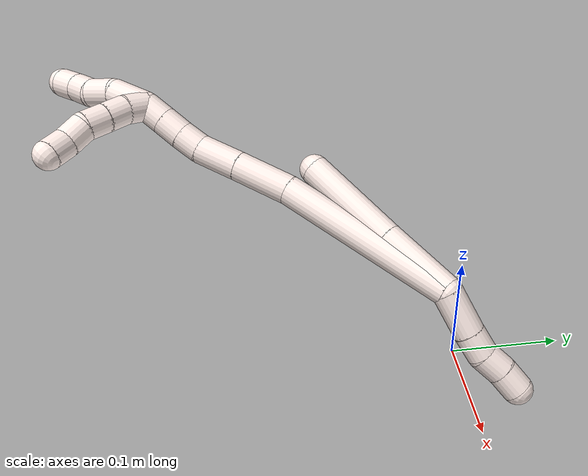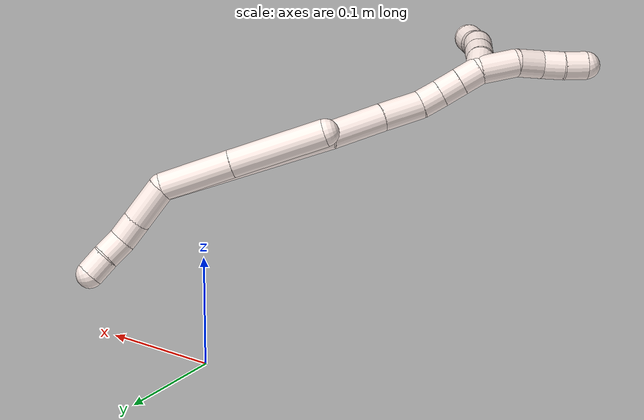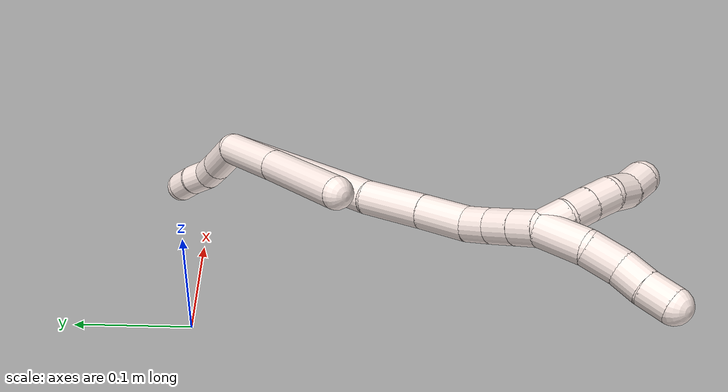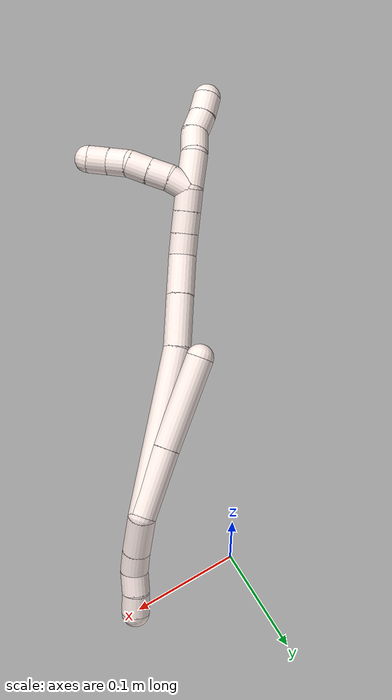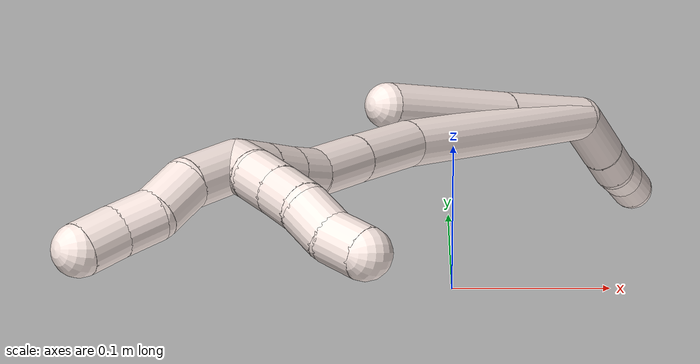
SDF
<sdf version="1.7">
 <world name="default">
  <model name="11">
   <static>0</static>
   <link name="11">
    <collision name="collision-cylinder-e_1_2_8">
     <pose>-0.000156 -2e-06 0.031871 6.7e-05 -0.004898 -0</pose>
     <geometry><cylinder><radius>0.0125</radius><length>0.063743</length></cylinder></geometry>
     <surface>
      <friction><ode><mu>1.16</mu><mu2>1.16</mu2><slip1>0</slip1><slip2>0</slip2></ode></friction>
      <contact><ode><kp>1e+06</kp><kd>1</kd><max_vel>0</max_vel><min_depth>0.001</min_depth></ode></contact>
     </surface>
    </collision>
    <visual name="visual-cylinder-e_1_2_8">
     <pose>-0.000156 -2e-06 0.031871 6.7e-05 -0.004898 -0</pose>
     <geometry><cylinder><radius>0.0125</radius><length>0.063743</length></cylinder></geometry>
     <material><ambient>1 0.933333 0.909804 1</ambient></material>
    </visual>
    <collision name="collision-cylinder-e_2_8_6">
     <pose>0.000416 -0.000528 0.106862 0.012141 0.016874 0.000102</pose>
     <geometry><cylinder><radius>0.0125</radius><length>0.086257</length></cylinder></geometry>
     <surface>
      <friction><ode><mu>1.16</mu><mu2>1.16</mu2><slip1>0</slip1><slip2>0</slip2></ode></friction>
      <contact><ode><kp>1e+06</kp><kd>1</kd><max_vel>0</max_vel><min_depth>0.001</min_depth></ode></contact>
     </surface>
    </collision>
    <visual name="visual-cylinder-e_2_8_6">
     <pose>0.000416 -0.000528 0.106862 0.012141 0.016874 0.000102</pose>
     <geometry><cylinder><radius>0.0125</radius><length>0.086257</length></cylinder></geometry>
     <material><ambient>1 0.933333 0.909804 1</ambient></material>
    </visual>
    <collision name="collision-cylinder-e_1_2_9">
     <pose>0.005312 0.009286 -0.015372 -2.59816 0.287582 -0.958562</pose>
     <geometry><cylinder><radius>0.0125</radius><length>0.037457</length></cylinder></geometry>
     <surface>
      <friction><ode><mu>1.16</mu><mu2>1.16</mu2><slip1>0</slip1><slip2>0</slip2></ode></friction>
      <contact><ode><kp>1e+06</kp><kd>1</kd><max_vel>0</max_vel><min_depth>0.001</min_depth></ode></contact>
     </surface>
    </collision>
    <visual name="visual-cylinder-e_1_2_9">
     <pose>0.005312 0.009286 -0.015372 -2.59816 0.287582 -0.958562</pose>
     <geometry><cylinder><radius>0.0125</radius><length>0.037457</length></cylinder></geometry>
     <material><ambient>1 0.933333 0.909804 1</ambient></material>
    </visual>
    <collision name="collision-cylinder-e_2_9_10">
     <pose>0.014082 0.023476 -0.039588 -2.63531 0.329465 -1.14234</pose>
     <geometry><cylinder><radius>0.0125</radius><length>0.021373</length></cylinder></geometry>
     <surface>
      <friction><ode><mu>1.16</mu><mu2>1.16</mu2><slip1>0</slip1><slip2>0</slip2></ode></friction>
      <contact><ode><kp>1e+06</kp><kd>1</kd><max_vel>0</max_vel><min_depth>0.001</min_depth></ode></contact>
     </surface>
    </collision>
    <visual name="visual-cylinder-e_2_9_10">
     <pose>0.014082 0.023476 -0.039588 -2.63531 0.329465 -1.14234</pose>
     <geometry><cylinder><radius>0.0125</radius><length>0.021373</length></cylinder></geometry>
     <material><ambient>1 0.933333 0.909804 1</ambient></material>
    </visual>
    <collision name="collision-cylinder-e_3_10_11">
     <pose>0.022181 0.030398 -0.057455 -2.92154 0.465281 -2.26898</pose>
     <geometry><cylinder><radius>0.0125</radius><length>0.020693</length></cylinder></geometry>
     <surface>
      <friction><ode><mu>1.16</mu><mu2>1.16</mu2><slip1>0</slip1><slip2>0</slip2></ode></friction>
      <contact><ode><kp>1e+06</kp><kd>1</kd><max_vel>0</max_vel><min_depth>0.001</min_depth></ode></contact>
     </surface>
    </collision>
    <visual name="visual-cylinder-e_3_10_11">
     <pose>0.022181 0.030398 -0.057455 -2.92154 0.465281 -2.26898</pose>
     <geometry><cylinder><radius>0.0125</radius><length>0.020693</length></cylinder></geometry>
     <material><ambient>1 0.933333 0.909804 1</ambient></material>
    </visual>
    <collision name="collision-cylinder-e_4_11_5">
     <pose>0.030751 0.035722 -0.075337 -2.78448 0.393672 -1.67042</pose>
     <geometry><cylinder><radius>0.0125</radius><length>0.020477</length></cylinder></geometry>
     <surface>
      <friction><ode><mu>1.16</mu><mu2>1.16</mu2><slip1>0</slip1><slip2>0</slip2></ode></friction>
      <contact><ode><kp>1e+06</kp><kd>1</kd><max_vel>0</max_vel><min_depth>0.001</min_depth></ode></contact>
     </surface>
    </collision>
    <visual name="visual-cylinder-e_4_11_5">
     <pose>0.030751 0.035722 -0.075337 -2.78448 0.393672 -1.67042</pose>
     <geometry><cylinder><radius>0.0125</radius><length>0.020477</length></cylinder></geometry>
     <material><ambient>1 0.933333 0.909804 1</ambient></material>
    </visual>
    <collision name="collision-cylinder-e_1_2_12">
     <pose>-0.00795 0.010157 0.075969 -0.132905 -0.103355 0.006884</pose>
     <geometry><cylinder><radius>0.0125</radius><length>0.154113</length></cylinder></geometry>
     <surface>
      <friction><ode><mu>1.16</mu><mu2>1.16</mu2><slip1>0</slip1><slip2>0</slip2></ode></friction>
      <contact><ode><kp>1e+06</kp><kd>1</kd><max_vel>0</max_vel><min_depth>0.001</min_depth></ode></contact>
     </surface>
    </collision>
    <visual name="visual-cylinder-e_1_2_12">
     <pose>-0.00795 0.010157 0.075969 -0.132905 -0.103355 0.006884</pose>
     <geometry><cylinder><radius>0.0125</radius><length>0.154113</length></cylinder></geometry>
     <material><ambient>1 0.933333 0.909804 1</ambient></material>
    </visual>
    <collision name="collision-cylinder-e_2_12_13">
     <pose>-0.021512 0.025244 0.175009 -0.210575 -0.233551 0.024793</pose>
     <geometry><cylinder><radius>0.0125</radius><length>0.048501</length></cylinder></geometry>
     <surface>
      <friction><ode><mu>1.16</mu><mu2>1.16</mu2><slip1>0</slip1><slip2>0</slip2></ode></friction>
      <contact><ode><kp>1e+06</kp><kd>1</kd><max_vel>0</max_vel><min_depth>0.001</min_depth></ode></contact>
     </surface>
    </collision>
    <visual name="visual-cylinder-e_2_12_13">
     <pose>-0.021512 0.025244 0.175009 -0.210575 -0.233551 0.024793</pose>
     <geometry><cylinder><radius>0.0125</radius><length>0.048501</length></cylinder></geometry>
     <material><ambient>1 0.933333 0.909804 1</ambient></material>
    </visual>
    <collision name="collision-cylinder-e_3_13_14">
     <pose>-0.031239 0.034245 0.215602 -0.228224 -0.224851 0.025878</pose>
     <geometry><cylinder><radius>0.0125</radius><length>0.036905</length></cylinder></geometry>
     <surface>
      <friction><ode><mu>1.16</mu><mu2>1.16</mu2><slip1>0</slip1><slip2>0</slip2></ode></friction>
      <contact><ode><kp>1e+06</kp><kd>1</kd><max_vel>0</max_vel><min_depth>0.001</min_depth></ode></contact>
     </surface>
    </collision>
    <visual name="visual-cylinder-e_3_13_14">
     <pose>-0.031239 0.034245 0.215602 -0.228224 -0.224851 0.025878</pose>
     <geometry><cylinder><radius>0.0125</radius><length>0.036905</length></cylinder></geometry>
     <material><ambient>1 0.933333 0.909804 1</ambient></material>
    </visual>
    <collision name="collision-cylinder-e_4_14_15">
     <pose>-0.037948 0.038208 0.242844 0.010999 -0.260816 -0.001443</pose>
     <geometry><cylinder><radius>0.0125</radius><length>0.020123</length></cylinder></geometry>
     <surface>
      <friction><ode><mu>1.16</mu><mu2>1.16</mu2><slip1>0</slip1><slip2>0</slip2></ode></friction>
      <contact><ode><kp>1e+06</kp><kd>1</kd><max_vel>0</max_vel><min_depth>0.001</min_depth></ode></contact>
     </surface>
    </collision>
    <visual name="visual-cylinder-e_4_14_15">
     <pose>-0.037948 0.038208 0.242844 0.010999 -0.260816 -0.001443</pose>
     <geometry><cylinder><radius>0.0125</radius><length>0.020123</length></cylinder></geometry>
     <material><ambient>1 0.933333 0.909804 1</ambient></material>
    </visual>
    <collision name="collision-cylinder-e_5_15_16">
     <pose>-0.043073 0.037523 0.262395 0.058731 -0.251591 -0.007429</pose>
     <geometry><cylinder><radius>0.0125</radius><length>0.020334</length></cylinder></geometry>
     <surface>
      <friction><ode><mu>1.16</mu><mu2>1.16</mu2><slip1>0</slip1><slip2>0</slip2></ode></friction>
      <contact><ode><kp>1e+06</kp><kd>1</kd><max_vel>0</max_vel><min_depth>0.001</min_depth></ode></contact>
     </surface>
    </collision>
    <visual name="visual-cylinder-e_5_15_16">
     <pose>-0.043073 0.037523 0.262395 0.058731 -0.251591 -0.007429</pose>
     <geometry><cylinder><radius>0.0125</radius><length>0.020334</length></cylinder></geometry>
     <material><ambient>1 0.933333 0.909804 1</ambient></material>
    </visual>
    <collision name="collision-cylinder-e_6_16_1">
     <pose>-0.04811 0.036468 0.281906 0.049264 -0.252985 -0.006266</pose>
     <geometry><cylinder><radius>0.0125</radius><length>0.020024</length></cylinder></geometry>
     <surface>
      <friction><ode><mu>1.16</mu><mu2>1.16</mu2><slip1>0</slip1><slip2>0</slip2></ode></friction>
      <contact><ode><kp>1e+06</kp><kd>1</kd><max_vel>0</max_vel><min_depth>0.001</min_depth></ode></contact>
     </surface>
    </collision>
    <visual name="visual-cylinder-e_6_16_1">
     <pose>-0.04811 0.036468 0.281906 0.049264 -0.252985 -0.006266</pose>
     <geometry><cylinder><radius>0.0125</radius><length>0.020024</length></cylinder></geometry>
     <material><ambient>1 0.933333 0.909804 1</ambient></material>
    </visual>
    <collision name="collision-cylinder-e_1_1_17">
     <pose>-0.0528 0.040843 0.307924 -0.288737 -0.127435 0.018551</pose>
     <geometry><cylinder><radius>0.0125</radius><length>0.034362</length></cylinder></geometry>
     <surface>
      <friction><ode><mu>1.16</mu><mu2>1.16</mu2><slip1>0</slip1><slip2>0</slip2></ode></friction>
      <contact><ode><kp>1e+06</kp><kd>1</kd><max_vel>0</max_vel><min_depth>0.001</min_depth></ode></contact>
     </surface>
    </collision>
    <visual name="visual-cylinder-e_1_1_17">
     <pose>-0.0528 0.040843 0.307924 -0.288737 -0.127435 0.018551</pose>
     <geometry><cylinder><radius>0.0125</radius><length>0.034362</length></cylinder></geometry>
     <material><ambient>1 0.933333 0.909804 1</ambient></material>
    </visual>
    <collision name="collision-cylinder-e_2_17_18">
     <pose>-0.056397 0.052819 0.334234 -0.62023 -0.11483 0.036834</pose>
     <geometry><cylinder><radius>0.0125</radius><length>0.024675</length></cylinder></geometry>
     <surface>
      <friction><ode><mu>1.16</mu><mu2>1.16</mu2><slip1>0</slip1><slip2>0</slip2></ode></friction>
      <contact><ode><kp>1e+06</kp><kd>1</kd><max_vel>0</max_vel><min_depth>0.001</min_depth></ode></contact>
     </surface>
    </collision>
    <visual name="visual-cylinder-e_2_17_18">
     <pose>-0.056397 0.052819 0.334234 -0.62023 -0.11483 0.036834</pose>
     <geometry><cylinder><radius>0.0125</radius><length>0.024675</length></cylinder></geometry>
     <material><ambient>1 0.933333 0.909804 1</ambient></material>
    </visual>
    <collision name="collision-cylinder-e_3_18_19">
     <pose>-0.056404 0.063809 0.353621 -0.389669 0.137373 -0.02715</pose>
     <geometry><cylinder><radius>0.0125</radius><length>0.020547</length></cylinder></geometry>
     <surface>
      <friction><ode><mu>1.16</mu><mu2>1.16</mu2><slip1>0</slip1><slip2>0</slip2></ode></friction>
      <contact><ode><kp>1e+06</kp><kd>1</kd><max_vel>0</max_vel><min_depth>0.001</min_depth></ode></contact>
     </surface>
    </collision>
    <visual name="visual-cylinder-e_3_18_19">
     <pose>-0.056404 0.063809 0.353621 -0.389669 0.137373 -0.02715</pose>
     <geometry><cylinder><radius>0.0125</radius><length>0.020547</length></cylinder></geometry>
     <material><ambient>1 0.933333 0.909804 1</ambient></material>
    </visual>
    <collision name="collision-cylinder-e_4_19_4">
     <pose>-0.054819 0.071619 0.372449 -0.396835 0.017421 -0.003503</pose>
     <geometry><cylinder><radius>0.0125</radius><length>0.020416</length></cylinder></geometry>
     <surface>
      <friction><ode><mu>1.16</mu><mu2>1.16</mu2><slip1>0</slip1><slip2>0</slip2></ode></friction>
      <contact><ode><kp>1e+06</kp><kd>1</kd><max_vel>0</max_vel><min_depth>0.001</min_depth></ode></contact>
     </surface>
    </collision>
    <visual name="visual-cylinder-e_4_19_4">
     <pose>-0.054819 0.071619 0.372449 -0.396835 0.017421 -0.003503</pose>
     <geometry><cylinder><radius>0.0125</radius><length>0.020416</length></cylinder></geometry>
     <material><ambient>1 0.933333 0.909804 1</ambient></material>
    </visual>
    <collision name="collision-cylinder-e_1_1_20">
     <pose>-0.060013 0.038855 0.293458 -0.992394 -1.22167 0.724632</pose>
     <geometry><cylinder><radius>0.0125</radius><length>0.02</length></cylinder></geometry>
     <surface>
      <friction><ode><mu>1.16</mu><mu2>1.16</mu2><slip1>0</slip1><slip2>0</slip2></ode></friction>
      <contact><ode><kp>1e+06</kp><kd>1</kd><max_vel>0</max_vel><min_depth>0.001</min_depth></ode></contact>
     </surface>
    </collision>
    <visual name="visual-cylinder-e_1_1_20">
     <pose>-0.060013 0.038855 0.293458 -0.992394 -1.22167 0.724632</pose>
     <geometry><cylinder><radius>0.0125</radius><length>0.02</length></cylinder></geometry>
     <material><ambient>1 0.933333 0.909804 1</ambient></material>
    </visual>
    <collision name="collision-cylinder-e_2_20_21">
     <pose>-0.078599 0.045662 0.295433 -1.54422 -1.1654 1.14111</pose>
     <geometry><cylinder><radius>0.0125</radius><length>0.02</length></cylinder></geometry>
     <surface>
      <friction><ode><mu>1.16</mu><mu2>1.16</mu2><slip1>0</slip1><slip2>0</slip2></ode></friction>
      <contact><ode><kp>1e+06</kp><kd>1</kd><max_vel>0</max_vel><min_depth>0.001</min_depth></ode></contact>
     </surface>
    </collision>
    <visual name="visual-cylinder-e_2_20_21">
     <pose>-0.078599 0.045662 0.295433 -1.54422 -1.1654 1.14111</pose>
     <geometry><cylinder><radius>0.0125</radius><length>0.02</length></cylinder></geometry>
     <material><ambient>1 0.933333 0.909804 1</ambient></material>
    </visual>
    <collision name="collision-cylinder-e_3_21_22">
     <pose>-0.09691 0.053686 0.295915 -1.47875 -1.14842 1.06601</pose>
     <geometry><cylinder><radius>0.0125</radius><length>0.02</length></cylinder></geometry>
     <surface>
      <friction><ode><mu>1.16</mu><mu2>1.16</mu2><slip1>0</slip1><slip2>0</slip2></ode></friction>
      <contact><ode><kp>1e+06</kp><kd>1</kd><max_vel>0</max_vel><min_depth>0.001</min_depth></ode></contact>
     </surface>
    </collision>
    <visual name="visual-cylinder-e_3_21_22">
     <pose>-0.09691 0.053686 0.295915 -1.47875 -1.14842 1.06601</pose>
     <geometry><cylinder><radius>0.0125</radius><length>0.02</length></cylinder></geometry>
     <material><ambient>1 0.933333 0.909804 1</ambient></material>
    </visual>
    <collision name="collision-cylinder-e_4_22_23">
     <pose>-0.113553 0.064187 0.2948 -1.79904 -0.851361 1.03734</pose>
     <geometry><cylinder><radius>0.0125</radius><length>0.02</length></cylinder></geometry>
     <surface>
      <friction><ode><mu>1.16</mu><mu2>1.16</mu2><slip1>0</slip1><slip2>0</slip2></ode></friction>
      <contact><ode><kp>1e+06</kp><kd>1</kd><max_vel>0</max_vel><min_depth>0.001</min_depth></ode></contact>
     </surface>
    </collision>
    <visual name="visual-cylinder-e_4_22_23">
     <pose>-0.113553 0.064187 0.2948 -1.79904 -0.851361 1.03734</pose>
     <geometry><cylinder><radius>0.0125</radius><length>0.02</length></cylinder></geometry>
     <material><ambient>1 0.933333 0.909804 1</ambient></material>
    </visual>
    <collision name="collision-cylinder-e_5_23_3">
     <pose>-0.130076 0.074441 0.291244 -2.06479 -1.12001 1.6193</pose>
     <geometry><cylinder><radius>0.0125</radius><length>0.02</length></cylinder></geometry>
     <surface>
      <friction><ode><mu>1.16</mu><mu2>1.16</mu2><slip1>0</slip1><slip2>0</slip2></ode></friction>
      <contact><ode><kp>1e+06</kp><kd>1</kd><max_vel>0</max_vel><min_depth>0.001</min_depth></ode></contact>
     </surface>
    </collision>
    <visual name="visual-cylinder-e_5_23_3">
     <pose>-0.130076 0.074441 0.291244 -2.06479 -1.12001 1.6193</pose>
     <geometry><cylinder><radius>0.0125</radius><length>0.02</length></cylinder></geometry>
     <material><ambient>1 0.933333 0.909804 1</ambient></material>
    </visual>
    <collision name="collision-sphere-3">
     <pose>-0.139077 0.078277 0.289178 0 -0 0</pose>
     <geometry><sphere><radius>0.0125</radius></sphere></geometry>
     <surface>
      <friction><ode><mu>1.16</mu><mu2>1.16</mu2><slip1>0</slip1><slip2>0</slip2></ode></friction>
      <contact><ode><kp>1e+06</kp><kd>1</kd><max_vel>0</max_vel><min_depth>0.001</min_depth></ode></contact>
     </surface>
    </collision>
    <visual name="visual-sphere-3">
     <pose>-0.139077 0.078277 0.289178 0 -0 0</pose>
     <geometry><sphere><radius>0.0125</radius></sphere></geometry>
     <material><ambient>1 0.933333 0.909804 1</ambient></material>
    </visual>
    <collision name="collision-sphere-23">
     <pose>-0.121075 0.070605 0.293309 0 -0 0</pose>
     <geometry><sphere><radius>0.0125</radius></sphere></geometry>
     <surface>
      <friction><ode><mu>1.16</mu><mu2>1.16</mu2><slip1>0</slip1><slip2>0</slip2></ode></friction>
      <contact><ode><kp>1e+06</kp><kd>1</kd><max_vel>0</max_vel><min_depth>0.001</min_depth></ode></contact>
     </surface>
    </collision>
    <visual name="visual-sphere-23">
     <pose>-0.121075 0.070605 0.293309 0 -0 0</pose>
     <geometry><sphere><radius>0.0125</radius></sphere></geometry>
     <material><ambient>1 0.933333 0.909804 1</ambient></material>
    </visual>
    <collision name="collision-sphere-22">
     <pose>-0.106031 0.057768 0.296291 0 -0 0</pose>
     <geometry><sphere><radius>0.0125</radius></sphere></geometry>
     <surface>
      <friction><ode><mu>1.16</mu><mu2>1.16</mu2><slip1>0</slip1><slip2>0</slip2></ode></friction>
      <contact><ode><kp>1e+06</kp><kd>1</kd><max_vel>0</max_vel><min_depth>0.001</min_depth></ode></contact>
     </surface>
    </collision>
    <visual name="visual-sphere-22">
     <pose>-0.106031 0.057768 0.296291 0 -0 0</pose>
     <geometry><sphere><radius>0.0125</radius></sphere></geometry>
     <material><ambient>1 0.933333 0.909804 1</ambient></material>
    </visual>
    <collision name="collision-sphere-21">
     <pose>-0.087789 0.049604 0.295538 0 -0 0</pose>
     <geometry><sphere><radius>0.0125</radius></sphere></geometry>
     <surface>
      <friction><ode><mu>1.16</mu><mu2>1.16</mu2><slip1>0</slip1><slip2>0</slip2></ode></friction>
      <contact><ode><kp>1e+06</kp><kd>1</kd><max_vel>0</max_vel><min_depth>0.001</min_depth></ode></contact>
     </surface>
    </collision>
    <visual name="visual-sphere-21">
     <pose>-0.087789 0.049604 0.295538 0 -0 0</pose>
     <geometry><sphere><radius>0.0125</radius></sphere></geometry>
     <material><ambient>1 0.933333 0.909804 1</ambient></material>
    </visual>
    <collision name="collision-sphere-20">
     <pose>-0.06941 0.041719 0.295328 0 -0 0</pose>
     <geometry><sphere><radius>0.0125</radius></sphere></geometry>
     <surface>
      <friction><ode><mu>1.16</mu><mu2>1.16</mu2><slip1>0</slip1><slip2>0</slip2></ode></friction>
      <contact><ode><kp>1e+06</kp><kd>1</kd><max_vel>0</max_vel><min_depth>0.001</min_depth></ode></contact>
     </surface>
    </collision>
    <visual name="visual-sphere-20">
     <pose>-0.06941 0.041719 0.295328 0 -0 0</pose>
     <geometry><sphere><radius>0.0125</radius></sphere></geometry>
     <material><ambient>1 0.933333 0.909804 1</ambient></material>
    </visual>
    <collision name="collision-sphere-4">
     <pose>-0.054641 0.075564 0.381862 0 -0 0</pose>
     <geometry><sphere><radius>0.0125</radius></sphere></geometry>
     <surface>
      <friction><ode><mu>1.16</mu><mu2>1.16</mu2><slip1>0</slip1><slip2>0</slip2></ode></friction>
      <contact><ode><kp>1e+06</kp><kd>1</kd><max_vel>0</max_vel><min_depth>0.001</min_depth></ode></contact>
     </surface>
    </collision>
    <visual name="visual-sphere-4">
     <pose>-0.054641 0.075564 0.381862 0 -0 0</pose>
     <geometry><sphere><radius>0.0125</radius></sphere></geometry>
     <material><ambient>1 0.933333 0.909804 1</ambient></material>
    </visual>
    <collision name="collision-sphere-11">
     <pose>0.026823 0.032416 -0.066478 0 -0 0</pose>
     <geometry><sphere><radius>0.0125</radius></sphere></geometry>
     <surface>
      <friction><ode><mu>1.16</mu><mu2>1.16</mu2><slip1>0</slip1><slip2>0</slip2></ode></friction>
      <contact><ode><kp>1e+06</kp><kd>1</kd><max_vel>0</max_vel><min_depth>0.001</min_depth></ode></contact>
     </surface>
    </collision>
    <visual name="visual-sphere-11">
     <pose>0.026823 0.032416 -0.066478 0 -0 0</pose>
     <geometry><sphere><radius>0.0125</radius></sphere></geometry>
     <material><ambient>1 0.933333 0.909804 1</ambient></material>
    </visual>
    <collision name="collision-sphere-10">
     <pose>0.017539 0.02838 -0.048431 0 -0 0</pose>
     <geometry><sphere><radius>0.0125</radius></sphere></geometry>
     <surface>
      <friction><ode><mu>1.16</mu><mu2>1.16</mu2><slip1>0</slip1><slip2>0</slip2></ode></friction>
      <contact><ode><kp>1e+06</kp><kd>1</kd><max_vel>0</max_vel><min_depth>0.001</min_depth></ode></contact>
     </surface>
    </collision>
    <visual name="visual-sphere-10">
     <pose>0.017539 0.02838 -0.048431 0 -0 0</pose>
     <geometry><sphere><radius>0.0125</radius></sphere></geometry>
     <material><ambient>1 0.933333 0.909804 1</ambient></material>
    </visual>
    <collision name="collision-sphere-6">
     <pose>0.001143 -0.001051 0.149981 0 -0 0</pose>
     <geometry><sphere><radius>0.0125</radius></sphere></geometry>
     <surface>
      <friction><ode><mu>1.16</mu><mu2>1.16</mu2><slip1>0</slip1><slip2>0</slip2></ode></friction>
      <contact><ode><kp>1e+06</kp><kd>1</kd><max_vel>0</max_vel><min_depth>0.001</min_depth></ode></contact>
     </surface>
    </collision>
    <visual name="visual-sphere-6">
     <pose>0.001143 -0.001051 0.149981 0 -0 0</pose>
     <geometry><sphere><radius>0.0125</radius></sphere></geometry>
     <material><ambient>1 0.933333 0.909804 1</ambient></material>
    </visual>
    <collision name="collision-sphere-9">
     <pose>0.010624 0.018573 -0.030744 0 -0 0</pose>
     <geometry><sphere><radius>0.0125</radius></sphere></geometry>
     <surface>
      <friction><ode><mu>1.16</mu><mu2>1.16</mu2><slip1>0</slip1><slip2>0</slip2></ode></friction>
      <contact><ode><kp>1e+06</kp><kd>1</kd><max_vel>0</max_vel><min_depth>0.001</min_depth></ode></contact>
     </surface>
    </collision>
    <visual name="visual-sphere-9">
     <pose>0.010624 0.018573 -0.030744 0 -0 0</pose>
     <geometry><sphere><radius>0.0125</radius></sphere></geometry>
     <material><ambient>1 0.933333 0.909804 1</ambient></material>
    </visual>
    <collision name="collision-sphere-2">
     <geometry><sphere><radius>0.0125</radius></sphere></geometry>
     <surface>
      <friction><ode><mu>1.16</mu><mu2>1.16</mu2><slip1>0</slip1><slip2>0</slip2></ode></friction>
      <contact><ode><kp>1e+06</kp><kd>1</kd><max_vel>0</max_vel><min_depth>0.001</min_depth></ode></contact>
     </surface>
    </collision>
    <visual name="visual-sphere-2">
     <geometry><sphere><radius>0.0125</radius></sphere></geometry>
     <material><ambient>1 0.933333 0.909804 1</ambient></material>
    </visual>
    <collision name="collision-sphere-19">
     <pose>-0.054997 0.067675 0.363035 0 -0 0</pose>
     <geometry><sphere><radius>0.0125</radius></sphere></geometry>
     <surface>
      <friction><ode><mu>1.16</mu><mu2>1.16</mu2><slip1>0</slip1><slip2>0</slip2></ode></friction>
      <contact><ode><kp>1e+06</kp><kd>1</kd><max_vel>0</max_vel><min_depth>0.001</min_depth></ode></contact>
     </surface>
    </collision>
    <visual name="visual-sphere-19">
     <pose>-0.054997 0.067675 0.363035 0 -0 0</pose>
     <geometry><sphere><radius>0.0125</radius></sphere></geometry>
     <material><ambient>1 0.933333 0.909804 1</ambient></material>
    </visual>
    <collision name="collision-sphere-8">
     <pose>-0.000312 -4e-06 0.063742 0 -0 0</pose>
     <geometry><sphere><radius>0.0125</radius></sphere></geometry>
     <surface>
      <friction><ode><mu>1.16</mu><mu2>1.16</mu2><slip1>0</slip1><slip2>0</slip2></ode></friction>
      <contact><ode><kp>1e+06</kp><kd>1</kd><max_vel>0</max_vel><min_depth>0.001</min_depth></ode></contact>
     </surface>
    </collision>
    <visual name="visual-sphere-8">
     <pose>-0.000312 -4e-06 0.063742 0 -0 0</pose>
     <geometry><sphere><radius>0.0125</radius></sphere></geometry>
     <material><ambient>1 0.933333 0.909804 1</ambient></material>
    </visual>
    <collision name="collision-sphere-5">
     <pose>0.034678 0.039027 -0.084196 0 -0 0</pose>
     <geometry><sphere><radius>0.0125</radius></sphere></geometry>
     <surface>
      <friction><ode><mu>1.16</mu><mu2>1.16</mu2><slip1>0</slip1><slip2>0</slip2></ode></friction>
      <contact><ode><kp>1e+06</kp><kd>1</kd><max_vel>0</max_vel><min_depth>0.001</min_depth></ode></contact>
     </surface>
    </collision>
    <visual name="visual-sphere-5">
     <pose>0.034678 0.039027 -0.084196 0 -0 0</pose>
     <geometry><sphere><radius>0.0125</radius></sphere></geometry>
     <material><ambient>1 0.933333 0.909804 1</ambient></material>
    </visual>
    <collision name="collision-sphere-12">
     <pose>-0.0159 0.020313 0.151939 0 -0 0</pose>
     <geometry><sphere><radius>0.0125</radius></sphere></geometry>
     <surface>
      <friction><ode><mu>1.16</mu><mu2>1.16</mu2><slip1>0</slip1><slip2>0</slip2></ode></friction>
      <contact><ode><kp>1e+06</kp><kd>1</kd><max_vel>0</max_vel><min_depth>0.001</min_depth></ode></contact>
     </surface>
    </collision>
    <visual name="visual-sphere-12">
     <pose>-0.0159 0.020313 0.151939 0 -0 0</pose>
     <geometry><sphere><radius>0.0125</radius></sphere></geometry>
     <material><ambient>1 0.933333 0.909804 1</ambient></material>
    </visual>
    <collision name="collision-sphere-13">
     <pose>-0.027125 0.030176 0.19808 0 -0 0</pose>
     <geometry><sphere><radius>0.0125</radius></sphere></geometry>
     <surface>
      <friction><ode><mu>1.16</mu><mu2>1.16</mu2><slip1>0</slip1><slip2>0</slip2></ode></friction>
      <contact><ode><kp>1e+06</kp><kd>1</kd><max_vel>0</max_vel><min_depth>0.001</min_depth></ode></contact>
     </surface>
    </collision>
    <visual name="visual-sphere-13">
     <pose>-0.027125 0.030176 0.19808 0 -0 0</pose>
     <geometry><sphere><radius>0.0125</radius></sphere></geometry>
     <material><ambient>1 0.933333 0.909804 1</ambient></material>
    </visual>
    <collision name="collision-sphere-14">
     <pose>-0.035353 0.038315 0.233123 0 -0 0</pose>
     <geometry><sphere><radius>0.0125</radius></sphere></geometry>
     <surface>
      <friction><ode><mu>1.16</mu><mu2>1.16</mu2><slip1>0</slip1><slip2>0</slip2></ode></friction>
      <contact><ode><kp>1e+06</kp><kd>1</kd><max_vel>0</max_vel><min_depth>0.001</min_depth></ode></contact>
     </surface>
    </collision>
    <visual name="visual-sphere-14">
     <pose>-0.035353 0.038315 0.233123 0 -0 0</pose>
     <geometry><sphere><radius>0.0125</radius></sphere></geometry>
     <material><ambient>1 0.933333 0.909804 1</ambient></material>
    </visual>
    <collision name="collision-sphere-15">
     <pose>-0.040542 0.038101 0.252565 0 -0 0</pose>
     <geometry><sphere><radius>0.0125</radius></sphere></geometry>
     <surface>
      <friction><ode><mu>1.16</mu><mu2>1.16</mu2><slip1>0</slip1><slip2>0</slip2></ode></friction>
      <contact><ode><kp>1e+06</kp><kd>1</kd><max_vel>0</max_vel><min_depth>0.001</min_depth></ode></contact>
     </surface>
    </collision>
    <visual name="visual-sphere-15">
     <pose>-0.040542 0.038101 0.252565 0 -0 0</pose>
     <geometry><sphere><radius>0.0125</radius></sphere></geometry>
     <material><ambient>1 0.933333 0.909804 1</ambient></material>
    </visual>
    <collision name="collision-sphere-16">
     <pose>-0.045604 0.036945 0.272225 0 -0 0</pose>
     <geometry><sphere><radius>0.0125</radius></sphere></geometry>
     <surface>
      <friction><ode><mu>1.16</mu><mu2>1.16</mu2><slip1>0</slip1><slip2>0</slip2></ode></friction>
      <contact><ode><kp>1e+06</kp><kd>1</kd><max_vel>0</max_vel><min_depth>0.001</min_depth></ode></contact>
     </surface>
    </collision>
    <visual name="visual-sphere-16">
     <pose>-0.045604 0.036945 0.272225 0 -0 0</pose>
     <geometry><sphere><radius>0.0125</radius></sphere></geometry>
     <material><ambient>1 0.933333 0.909804 1</ambient></material>
    </visual>
    <collision name="collision-sphere-1">
     <pose>-0.050616 0.03599 0.291588 0 -0 0</pose>
     <geometry><sphere><radius>0.0125</radius></sphere></geometry>
     <surface>
      <friction><ode><mu>1.16</mu><mu2>1.16</mu2><slip1>0</slip1><slip2>0</slip2></ode></friction>
      <contact><ode><kp>1e+06</kp><kd>1</kd><max_vel>0</max_vel><min_depth>0.001</min_depth></ode></contact>
     </surface>
    </collision>
    <visual name="visual-sphere-1">
     <pose>-0.050616 0.03599 0.291588 0 -0 0</pose>
     <geometry><sphere><radius>0.0125</radius></sphere></geometry>
     <material><ambient>1 0.933333 0.909804 1</ambient></material>
    </visual>
    <collision name="collision-sphere-18">
     <pose>-0.057811 0.059943 0.344208 0 -0 0</pose>
     <geometry><sphere><radius>0.0125</radius></sphere></geometry>
     <surface>
      <friction><ode><mu>1.16</mu><mu2>1.16</mu2><slip1>0</slip1><slip2>0</slip2></ode></friction>
      <contact><ode><kp>1e+06</kp><kd>1</kd><max_vel>0</max_vel><min_depth>0.001</min_depth></ode></contact>
     </surface>
    </collision>
    <visual name="visual-sphere-18">
     <pose>-0.057811 0.059943 0.344208 0 -0 0</pose>
     <geometry><sphere><radius>0.0125</radius></sphere></geometry>
     <material><ambient>1 0.933333 0.909804 1</ambient></material>
    </visual>
    <collision name="collision-sphere-17">
     <pose>-0.054983 0.045695 0.324261 0 -0 0</pose>
     <geometry><sphere><radius>0.0125</radius></sphere></geometry>
     <surface>
      <friction><ode><mu>1.16</mu><mu2>1.16</mu2><slip1>0</slip1><slip2>0</slip2></ode></friction>
      <contact><ode><kp>1e+06</kp><kd>1</kd><max_vel>0</max_vel><min_depth>0.001</min_depth></ode></contact>
     </surface>
    </collision>
    <visual name="visual-sphere-17">
     <pose>-0.054983 0.045695 0.324261 0 -0 0</pose>
     <geometry><sphere><radius>0.0125</radius></sphere></geometry>
     <material><ambient>1 0.933333 0.909804 1</ambient></material>
    </visual>
    <inertial>
     <pose>-0.025969 0.025995 0.152307 0 -0 0</pose>
     <mass>0.75</mass>
     <inertia><ixx>0.000414</ixx><ixy>0</ixy><ixz>0</ixz><iyy>0.000433</iyy><iyz>0</iyz><izz>2e-05</izz></inertia>
    </inertial>
   </link>
   <pose>0.072796 -0.035704 0.135591 -1.22108 0.372371 2.37193</pose>
  </model>
 </world>
</sdf>
